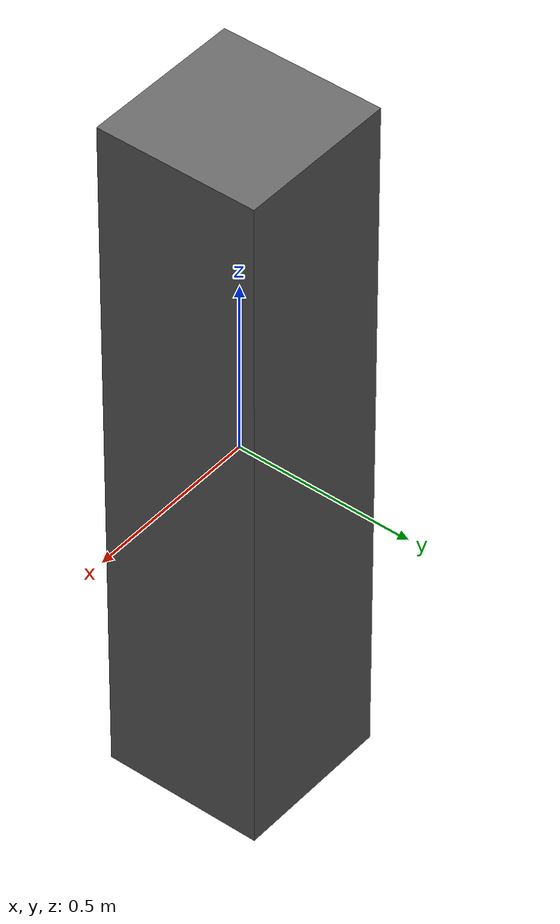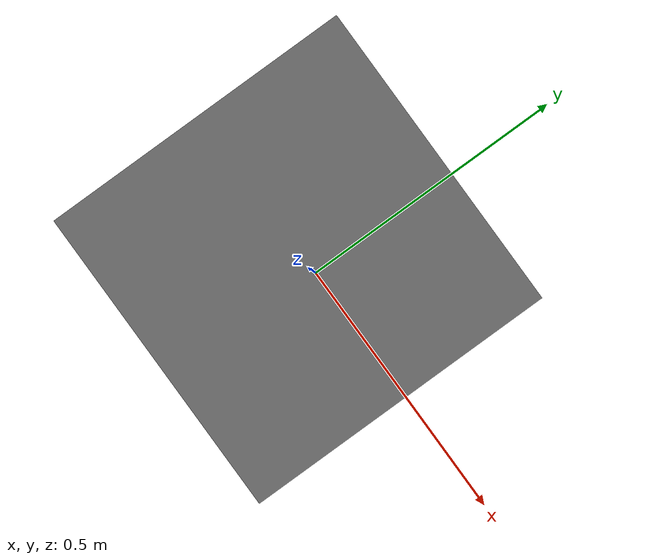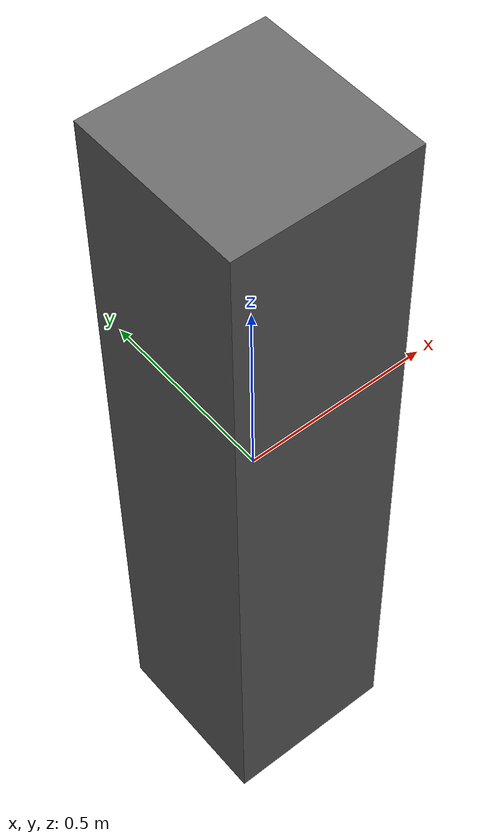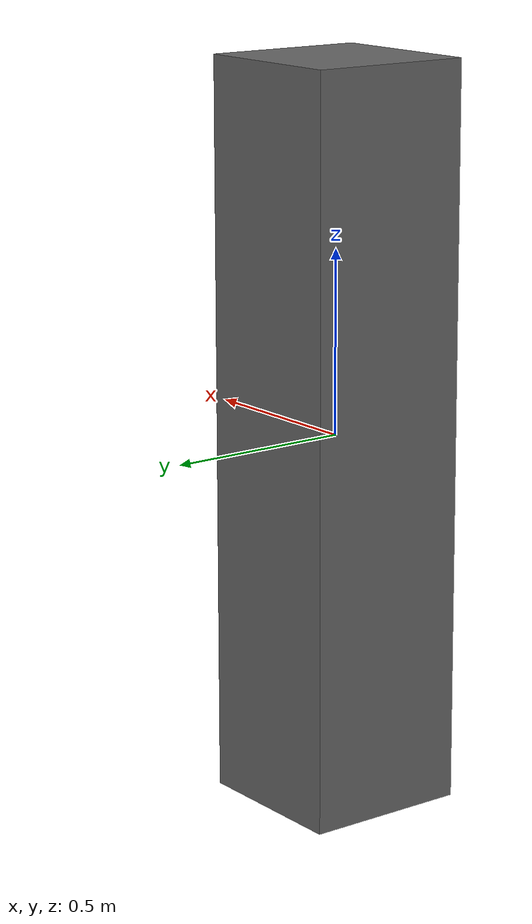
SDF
<?xml version='1.0' encoding='utf-8'?>
<sdf version='1.9'>
<model name='box'>
  <pose>0 0 0 0 0 0</pose>
  <link name='box_link'>
    <collision name='box_collision'>
      <geometry>
        <box>
          <size>0.4 0.4 2</size>
        </box>
      </geometry>
      <surface>
        <friction>
          <ode/>
        </friction>
        <bounce/>
        <contact/>
      </surface>
    </collision>
    <visual name='visual'>
      <geometry>
        <box>
          <size>0.45 0.45 2</size>
        </box>
      </geometry>
      <material>
        <ambient>0.25 0.25 0.25 1.0</ambient>
        <diffuse>0.4 0.4 0.4 1.0</diffuse>
        <specular>0.774597 0.774597 0.774597 1.0</specular>
      </material>
    </visual>
    <pose>0 0 0 0 0 0</pose>
    <enable_wind>false</enable_wind>
  </link>
  <static>true</static>
  <self_collide>false</self_collide>
</model>
</sdf>
